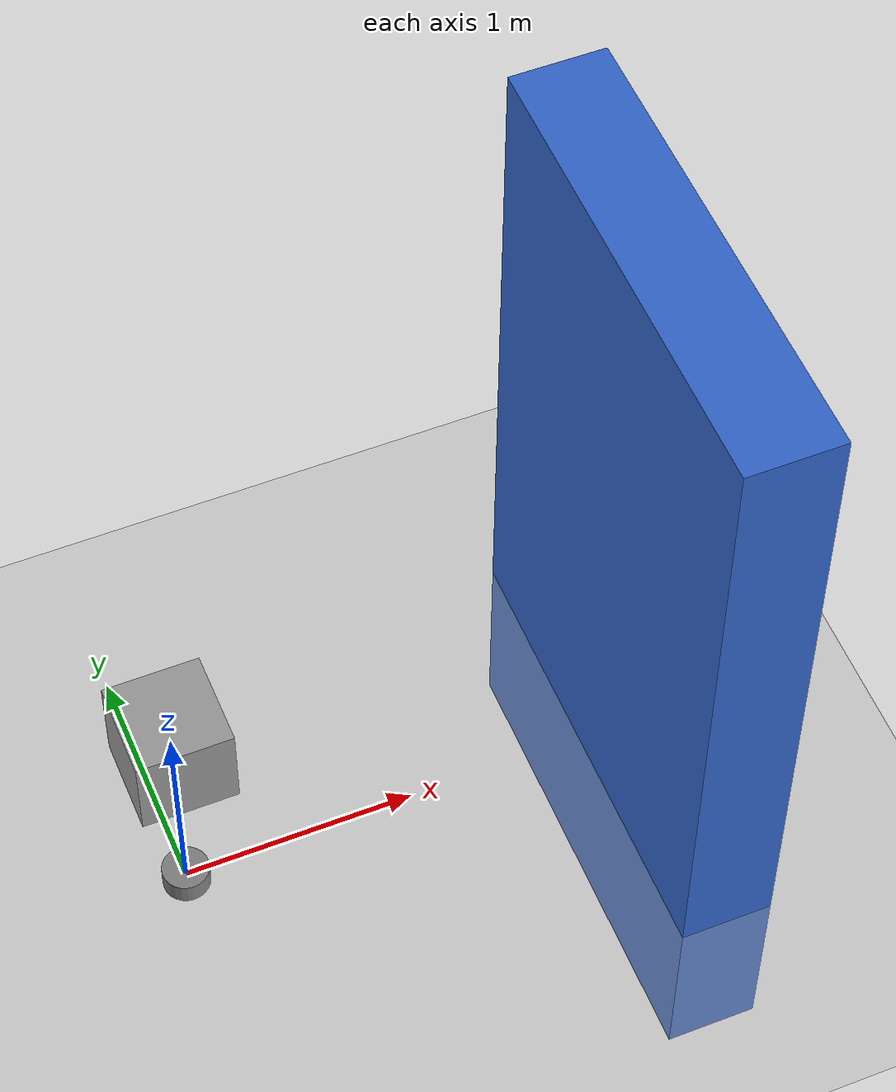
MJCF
<mujoco>
  <option gravity="0 0 -9.81"/>
  <worldbody>
    <!-- Hinge (represented as a fixed vertical cylinder) -->
    <body name="hinge" pos="0 0 0">
      <geom type="cylinder" size="0.1 0.05" rgba="0.5 0.5 0.5 1"/>
    </body>
    <!-- Support -->
    <body name="support" pos="0 0 1">
      <geom type="box" size="0.2 0.2 0.2" rgba="0.6 0.6 0.6 1"/>
    </body>
    <!-- Ground Surface -->
    <body name="surface" pos="-10 0 -0.1">
      <geom type="plane" size="30 30 0.1" rgba="0.7 0.7 0.7 1" friction="0.5 0.5 0.5"/>
    </body>
    <!-- Door -->
    <body name="door" pos="2 0 1">
      <geom type="box" size="0.2 1 2" density="1" rgba="0.2 0.4 0.8 1"/>
      <joint name="door_joint" type="hinge" axis="0 0 1"/>
    </body>
  </worldbody>
</mujoco>
